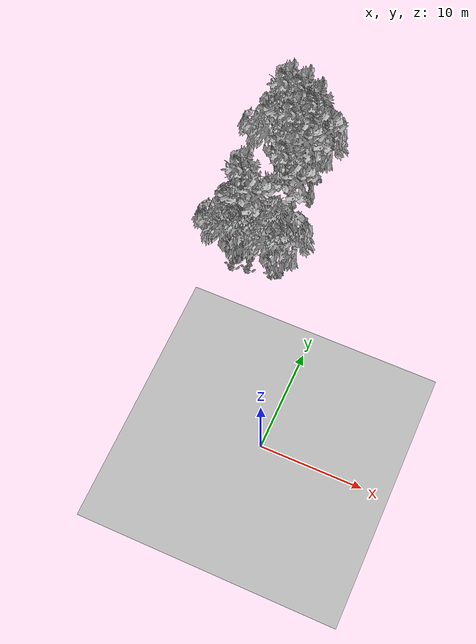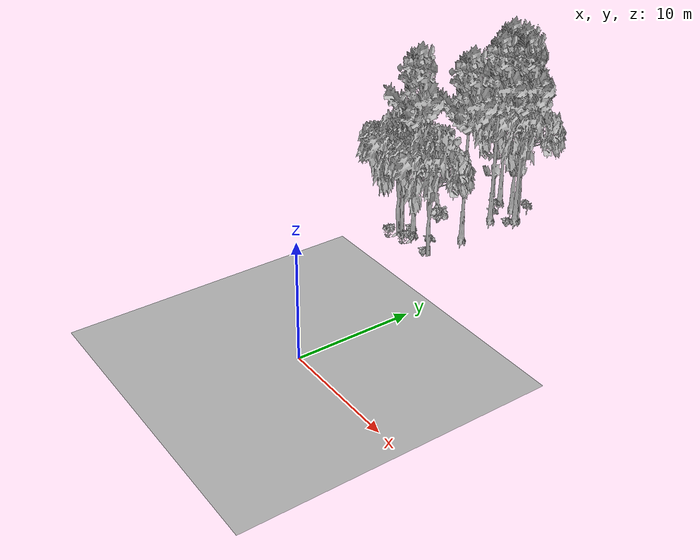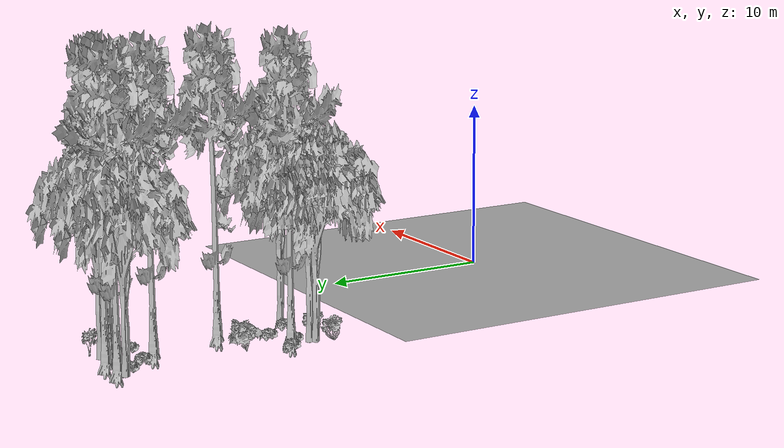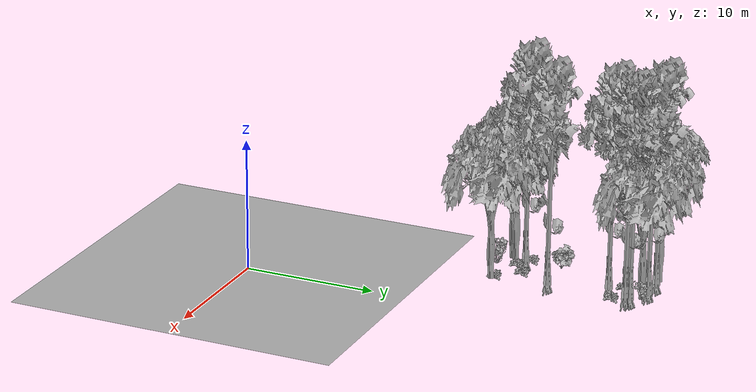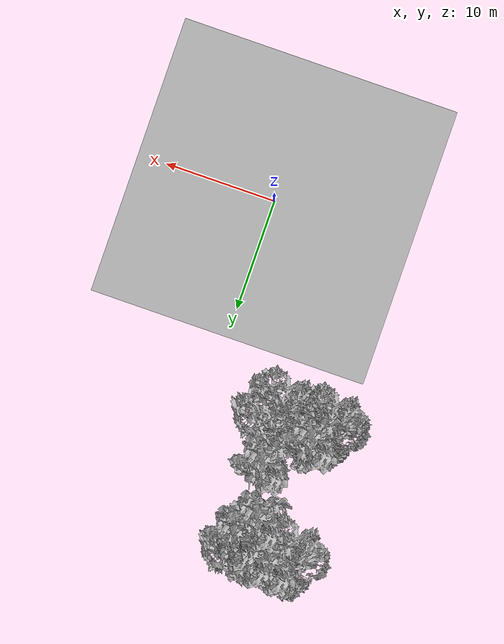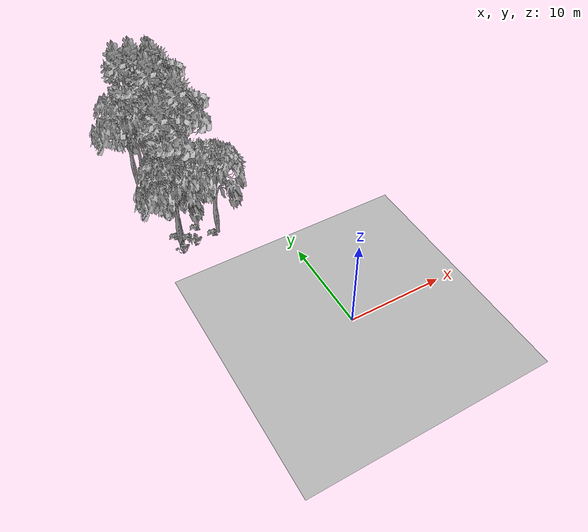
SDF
<sdf version="1.7">
 <world name="default">
  <model name="ground_plane">
   <static>1</static>
   <link name="link">
    <collision name="collision">
     <pose>-50 0 0 0 -0 0</pose>
     <geometry><plane><normal>0 0 1</normal><size>80 80</size></plane></geometry>
     <surface><contact><ode><min_depth>0.01</min_depth><max_vel>0</max_vel></ode></contact></surface>
    </collision>
    <visual name="grass">
     <cast_shadows>0</cast_shadows>
     <geometry>
      <mesh>
       <scale>0.46714285714285714 0.46714285714285714 0.1</scale>
       <uri>file://grass_plane/meshes/grass_plane.dae</uri>
      </mesh>
     </geometry>
    </visual>
   </link>
  </model>
  <model name="Tree 87">
   <static>1</static>
   <pose>-9.986467872918908 17.07238879267544 0 1.57079 -0 0</pose>
   <link name="link">
    <collision name="collision">
     <geometry><mesh><scale>3.5 5 3.5</scale><uri>model://tree_2/meshes/tree_2.obj</uri></mesh></geometry>
    </collision>
    <visual name="visual">
     <geometry><mesh><scale>3.5 5 3.5</scale><uri>model://tree_2/meshes/tree_2.obj</uri></mesh></geometry>
    </visual>
   </link>
  </model>
  <model name="Tree 154">
   <static>1</static>
   <pose>-6.475089032532544 20.97284869537505 0 1.57079 -0 0</pose>
   <link name="link">
    <collision name="collision">
     <geometry><mesh><scale>3.5 5 3.5</scale><uri>model://tree_9/meshes/tree_9.obj</uri></mesh></geometry>
    </collision>
    <visual name="visual">
     <geometry><mesh><scale>3.5 5 3.5</scale><uri>model://tree_9/meshes/tree_9.obj</uri></mesh></geometry>
    </visual>
   </link>
  </model>
  <model name="Tree 175">
   <static>1</static>
   <pose>-7.047490848210153 28.023106071567867 0 1.57079 -0 0</pose>
   <link name="link">
    <collision name="collision">
     <geometry><mesh><scale>3.5 5 3.5</scale><uri>model://tree_2/meshes/tree_2.obj</uri></mesh></geometry>
    </collision>
    <visual name="visual">
     <geometry><mesh><scale>3.5 5 3.5</scale><uri>model://tree_2/meshes/tree_2.obj</uri></mesh></geometry>
    </visual>
   </link>
  </model>
  <model name="Tree 199">
   <static>1</static>
   <pose>-6.285518072513639 27.032614856270996 0 1.57079 -0 0</pose>
   <link name="link">
    <collision name="collision">
     <geometry><mesh><scale>3.5 5 3.5</scale><uri>model://tree_9/meshes/tree_9.obj</uri></mesh></geometry>
    </collision>
    <visual name="visual">
     <geometry><mesh><scale>3.5 5 3.5</scale><uri>model://tree_9/meshes/tree_9.obj</uri></mesh></geometry>
    </visual>
   </link>
  </model>
  <model name="Tree 206">
   <static>1</static>
   <pose>-10.558343744203778 28.09621071794504 0 1.57079 -0 0</pose>
   <link name="link">
    <collision name="collision">
     <geometry><mesh><scale>3.5 5 3.5</scale><uri>model://tree_2/meshes/tree_2.obj</uri></mesh></geometry>
    </collision>
    <visual name="visual">
     <geometry><mesh><scale>3.5 5 3.5</scale><uri>model://tree_2/meshes/tree_2.obj</uri></mesh></geometry>
    </visual>
   </link>
  </model>
  <model name="Tree 413">
   <static>1</static>
   <pose>-9.5407018398137 18.024101195489585 0 1.57079 -0 0</pose>
   <link name="link">
    <collision name="collision">
     <geometry><mesh><scale>3.5 5 3.5</scale><uri>model://tree_9/meshes/tree_9.obj</uri></mesh></geometry>
    </collision>
    <visual name="visual">
     <geometry><mesh><scale>3.5 5 3.5</scale><uri>model://tree_9/meshes/tree_9.obj</uri></mesh></geometry>
    </visual>
   </link>
  </model>
  <model name="Tree 461">
   <static>1</static>
   <pose>-7.606661959096069 25.2861376870824 0 1.57079 -0 0</pose>
   <link name="link">
    <collision name="collision">
     <geometry><mesh><scale>3.5 5 3.5</scale><uri>model://tree_9/meshes/tree_9.obj</uri></mesh></geometry>
    </collision>
    <visual name="visual">
     <geometry><mesh><scale>3.5 5 3.5</scale><uri>model://tree_9/meshes/tree_9.obj</uri></mesh></geometry>
    </visual>
   </link>
  </model>
  <model name="Tree 470">
   <static>1</static>
   <pose>-9.586503939426454 28.184154618893132 0 1.57079 -0 0</pose>
   <link name="link">
    <collision name="collision">
     <geometry><mesh><scale>3.5 5 3.5</scale><uri>model://tree_9/meshes/tree_9.obj</uri></mesh></geometry>
    </collision>
    <visual name="visual">
     <geometry><mesh><scale>3.5 5 3.5</scale><uri>model://tree_9/meshes/tree_9.obj</uri></mesh></geometry>
    </visual>
   </link>
  </model>
  <model name="Tree 496">
   <static>1</static>
   <pose>-10.125612185288315 16.754714495169964 0 1.57079 -0 0</pose>
   <link name="link">
    <collision name="collision">
     <geometry><mesh><scale>3.5 5 3.5</scale><uri>model://tree_2/meshes/tree_2.obj</uri></mesh></geometry>
    </collision>
    <visual name="visual">
     <geometry><mesh><scale>3.5 5 3.5</scale><uri>model://tree_2/meshes/tree_2.obj</uri></mesh></geometry>
    </visual>
   </link>
  </model>
  <model name="Tree 505">
   <static>1</static>
   <pose>-7.977095413087056 28.17453607819691 0 1.57079 -0 0</pose>
   <link name="link">
    <collision name="collision">
     <geometry><mesh><scale>3.5 5 3.5</scale><uri>model://tree_9/meshes/tree_9.obj</uri></mesh></geometry>
    </collision>
    <visual name="visual">
     <geometry><mesh><scale>3.5 5 3.5</scale><uri>model://tree_9/meshes/tree_9.obj</uri></mesh></geometry>
    </visual>
   </link>
  </model>
  <model name="Tree 605">
   <static>1</static>
   <pose>-6.4465263068229675 27.345699045691845 0 1.57079 -0 0</pose>
   <link name="link">
    <collision name="collision">
     <geometry><mesh><scale>3.5 5 3.5</scale><uri>model://tree_9/meshes/tree_9.obj</uri></mesh></geometry>
    </collision>
    <visual name="visual">
     <geometry><mesh><scale>3.5 5 3.5</scale><uri>model://tree_9/meshes/tree_9.obj</uri></mesh></geometry>
    </visual>
   </link>
  </model>
  <model name="Tree 635">
   <static>1</static>
   <pose>-5.9541375884962875 16.75828892974139 0 1.57079 -0 0</pose>
   <link name="link">
    <collision name="collision">
     <geometry><mesh><scale>3.5 5 3.5</scale><uri>model://tree_2/meshes/tree_2.obj</uri></mesh></geometry>
    </collision>
    <visual name="visual">
     <geometry><mesh><scale>3.5 5 3.5</scale><uri>model://tree_2/meshes/tree_2.obj</uri></mesh></geometry>
    </visual>
   </link>
  </model>
  <model name="Bush 101">
   <static>1</static>
   <pose>-9.083325767856365 17.53125909233212 0 1.57079 -0 0</pose>
   <link name="link">
    <collision name="collision">
     <geometry><mesh><scale>2 2 2</scale><uri>model://bush_2/meshes/bush_2.obj</uri></mesh></geometry>
     <surface><contact><collide_without_contact>false</collide_without_contact></contact></surface>
    </collision>
    <visual name="visual">
     <geometry><mesh><scale>2 2 2</scale><uri>model://bush_2/meshes/bush_2.obj</uri></mesh></geometry>
    </visual>
   </link>
  </model>
  <model name="Bush 179">
   <static>1</static>
   <pose>-6.515796252735427 16.818548763182726 0 1.57079 -0 0</pose>
   <link name="link">
    <collision name="collision">
     <geometry><mesh><scale>2 2 2</scale><uri>model://bush_2/meshes/bush_2.obj</uri></mesh></geometry>
     <surface><contact><collide_without_contact>false</collide_without_contact></contact></surface>
    </collision>
    <visual name="visual">
     <geometry><mesh><scale>2 2 2</scale><uri>model://bush_2/meshes/bush_2.obj</uri></mesh></geometry>
    </visual>
   </link>
  </model>
  <model name="Bush 181">
   <static>1</static>
   <pose>-10.21397470425772 15.758930728527517 0 1.57079 -0 0</pose>
   <link name="link">
    <collision name="collision">
     <geometry><mesh><scale>2 2 2</scale><uri>model://bush_4/meshes/bush_4.obj</uri></mesh></geometry>
     <surface><contact><collide_without_contact>false</collide_without_contact></contact></surface>
    </collision>
    <visual name="visual">
     <geometry><mesh><scale>2 2 2</scale><uri>model://bush_4/meshes/bush_4.obj</uri></mesh></geometry>
    </visual>
   </link>
  </model>
  <model name="Bush 265">
   <static>1</static>
   <pose>-6.198938434878883 28.382303272457733 0 1.57079 -0 0</pose>
   <link name="link">
    <collision name="collision">
     <geometry><mesh><scale>2 2 2</scale><uri>model://bush_5/meshes/bush_5.obj</uri></mesh></geometry>
     <surface><contact><collide_without_contact>false</collide_without_contact></contact></surface>
    </collision>
    <visual name="visual">
     <geometry><mesh><scale>2 2 2</scale><uri>model://bush_5/meshes/bush_5.obj</uri></mesh></geometry>
    </visual>
   </link>
  </model>
  <model name="Bush 301">
   <static>1</static>
   <pose>-8.34182082229555 26.173866056481444 0 1.57079 -0 0</pose>
   <link name="link">
    <collision name="collision">
     <geometry><mesh><scale>2 2 2</scale><uri>model://bush_2/meshes/bush_2.obj</uri></mesh></geometry>
     <surface><contact><collide_without_contact>false</collide_without_contact></contact></surface>
    </collision>
    <visual name="visual">
     <geometry><mesh><scale>2 2 2</scale><uri>model://bush_2/meshes/bush_2.obj</uri></mesh></geometry>
    </visual>
   </link>
  </model>
  <model name="Bush 340">
   <static>1</static>
   <pose>-8.652380736726691 16.104067489309656 0 1.57079 -0 0</pose>
   <link name="link">
    <collision name="collision">
     <geometry><mesh><scale>2 2 2</scale><uri>model://bush_4/meshes/bush_4.obj</uri></mesh></geometry>
     <surface><contact><collide_without_contact>false</collide_without_contact></contact></surface>
    </collision>
    <visual name="visual">
     <geometry><mesh><scale>2 2 2</scale><uri>model://bush_4/meshes/bush_4.obj</uri></mesh></geometry>
    </visual>
   </link>
  </model>
  <model name="Bush 363">
   <static>1</static>
   <pose>-6.228456028106862 26.018504398029123 0 1.57079 -0 0</pose>
   <link name="link">
    <collision name="collision">
     <geometry><mesh><scale>2 2 2</scale><uri>model://bush_2/meshes/bush_2.obj</uri></mesh></geometry>
     <surface><contact><collide_without_contact>false</collide_without_contact></contact></surface>
    </collision>
    <visual name="visual">
     <geometry><mesh><scale>2 2 2</scale><uri>model://bush_2/meshes/bush_2.obj</uri></mesh></geometry>
    </visual>
   </link>
  </model>
  <model name="Bush 438">
   <static>1</static>
   <pose>-7.813265313756368 18.448040178280614 0 1.57079 -0 0</pose>
   <link name="link">
    <collision name="collision">
     <geometry><mesh><scale>2 2 2</scale><uri>model://bush_2/meshes/bush_2.obj</uri></mesh></geometry>
     <surface><contact><collide_without_contact>false</collide_without_contact></contact></surface>
    </collision>
    <visual name="visual">
     <geometry><mesh><scale>2 2 2</scale><uri>model://bush_2/meshes/bush_2.obj</uri></mesh></geometry>
    </visual>
   </link>
  </model>
  <model name="Bush 441">
   <static>1</static>
   <pose>-10.200189973975263 18.26675173142779 0 1.57079 -0 0</pose>
   <link name="link">
    <collision name="collision">
     <geometry><mesh><scale>2 2 2</scale><uri>model://bush_2/meshes/bush_2.obj</uri></mesh></geometry>
     <surface><contact><collide_without_contact>false</collide_without_contact></contact></surface>
    </collision>
    <visual name="visual">
     <geometry><mesh><scale>2 2 2</scale><uri>model://bush_2/meshes/bush_2.obj</uri></mesh></geometry>
    </visual>
   </link>
  </model>
  <model name="Bush 526">
   <static>1</static>
   <pose>-9.693428687187353 20.79784243706964 0 1.57079 -0 0</pose>
   <link name="link">
    <collision name="collision">
     <geometry><mesh><scale>2 2 2</scale><uri>model://bush_1/meshes/bush_1.obj</uri></mesh></geometry>
     <surface><contact><collide_without_contact>false</collide_without_contact></contact></surface>
    </collision>
    <visual name="visual">
     <geometry><mesh><scale>2 2 2</scale><uri>model://bush_1/meshes/bush_1.obj</uri></mesh></geometry>
    </visual>
   </link>
  </model>
  <model name="Bush 575">
   <static>1</static>
   <pose>-9.46314879858696 27.383158873816967 0 1.57079 -0 0</pose>
   <link name="link">
    <collision name="collision">
     <geometry><mesh><scale>2 2 2</scale><uri>model://bush_2/meshes/bush_2.obj</uri></mesh></geometry>
     <surface><contact><collide_without_contact>false</collide_without_contact></contact></surface>
    </collision>
    <visual name="visual">
     <geometry><mesh><scale>2 2 2</scale><uri>model://bush_2/meshes/bush_2.obj</uri></mesh></geometry>
    </visual>
   </link>
  </model>
 </world>
</sdf>
